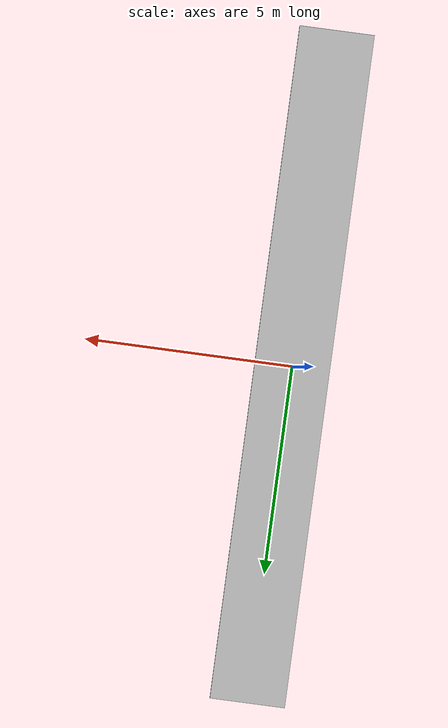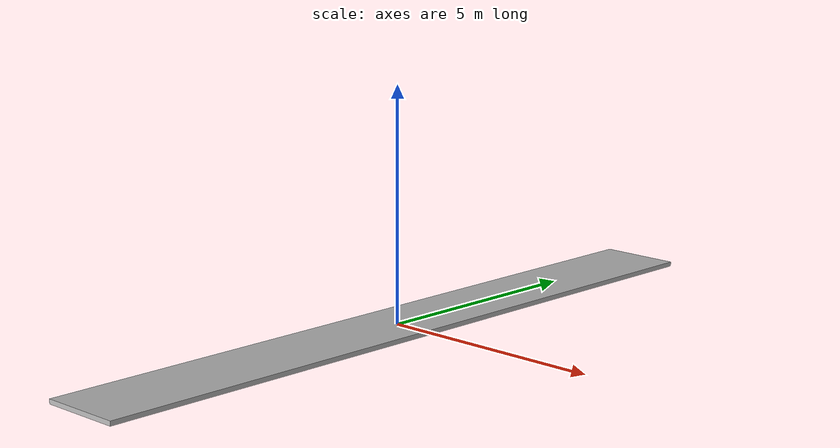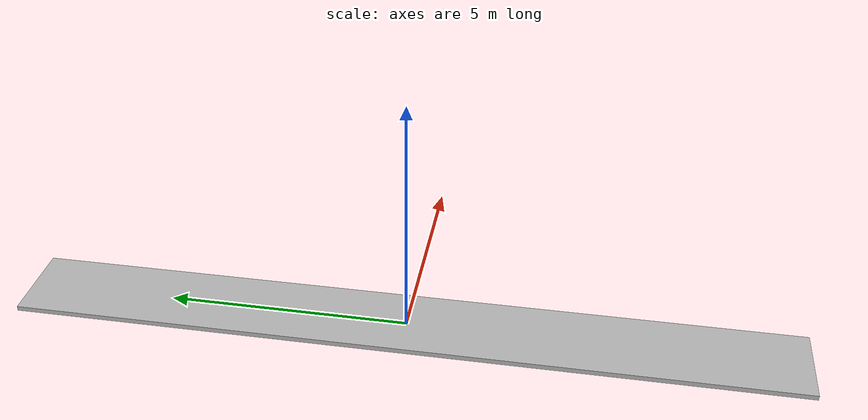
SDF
<?xml version="1.0" ?>
<sdf version="1.5">
  <model name="robotrace_plane">
    <static>true</static>
    <link name="link">
      <collision name="collision">
        <geometry>
          <box>
            <size>1.8 16.2 .1</size>
          </box>
        </geometry>
      </collision>
      <visual name="visual">
        <cast_shadows>false</cast_shadows>
        <geometry>
          <box>
            <size>1.8 16.2 .1</size>
          </box>
        </geometry>
        <material>
          <script>
            <uri>model://robotrace_plane/materials/scripts</uri>
            <uri>model://robotrace_plane/materials/textures</uri>
            <name>vrc/robotrace</name>
          </script>
        </material>
      </visual>
    </link>
  </model>
</sdf>
